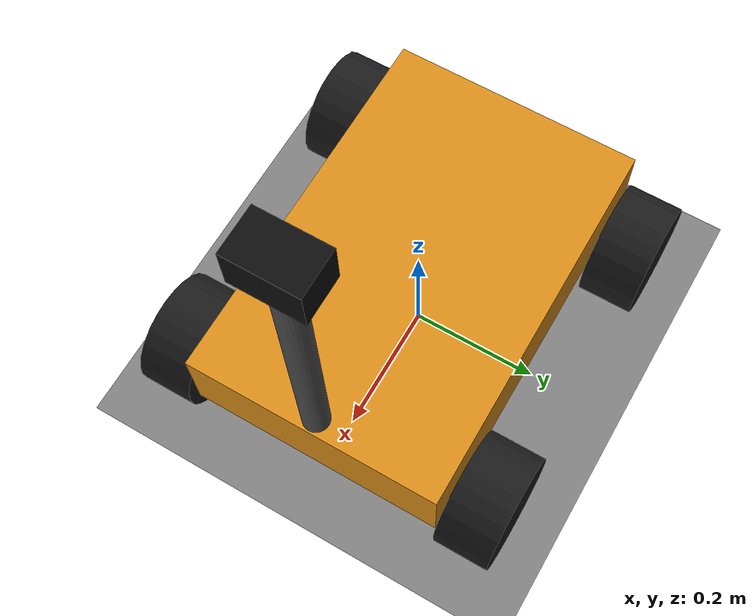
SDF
<?xml version="1.0" ?>
<!--
  로봇 검증 월드 (단계 3) — 평지에서 로봇 모델의 기본 동작 확인

  검증 항목:
   1. 모델 로드 (링크·조인트·센서 모두)
   2. cmd_vel 주행 → odom 발행, 직진/제자리회전 (설계서 §5.3 검증 게이트)
   3. 모든 센서 토픽 발행 (MID-70 / IMU / navsat / 카메라 3대)
-->
<sdf version="1.9">
  <world name="robot_test">
    <plugin filename="gz-sim-physics-system"           name="gz::sim::systems::Physics"/>
    <plugin filename="gz-sim-user-commands-system"     name="gz::sim::systems::UserCommands"/>
    <plugin filename="gz-sim-scene-broadcaster-system" name="gz::sim::systems::SceneBroadcaster"/>
    <plugin filename="gz-sim-sensors-system"           name="gz::sim::systems::Sensors">
      <render_engine>ogre2</render_engine>
    </plugin>
    <plugin filename="gz-sim-imu-system"    name="gz::sim::systems::Imu"/>
    <plugin filename="gz-sim-navsat-system" name="gz::sim::systems::NavSat"/>

    <physics name="2ms" type="dart">
      <max_step_size>0.002</max_step_size><real_time_factor>1.0</real_time_factor>
    </physics>

    <spherical_coordinates>
      <surface_model>EARTH_WGS84</surface_model>
      <world_frame_orientation>ENU</world_frame_orientation>
      <latitude_deg>36.57</latitude_deg><longitude_deg>128.50</longitude_deg><elevation>50</elevation>
    </spherical_coordinates>

    <scene><ambient>0.6 0.6 0.6 1</ambient><background>0.7 0.8 0.9</background>
      <shadows>false</shadows></scene>
    <light type="directional" name="sun"><cast_shadows>false</cast_shadows>
      <pose>0 0 10 0 0 0</pose><diffuse>1 1 1 1</diffuse>
      <direction>-0.3 0.3 -0.9</direction></light>

    <model name="ground_plane">
      <static>true</static>
      <link name="link">
        <collision name="c"><geometry><plane><normal>0 0 1</normal><size>100 100</size></plane></geometry>
          <surface><friction><ode><mu>1.0</mu><mu2>1.0</mu2></ode></friction></surface></collision>
        <visual name="v"><geometry><plane><normal>0 0 1</normal><size>100 100</size></plane></geometry>
          <material><ambient>0.5 0.5 0.5 1</ambient><diffuse>0.5 0.5 0.5 1</diffuse></material></visual>
      </link>
    </model>

    <include>
      <uri>model://scout_mini_mid70</uri>
      <pose>0 0 0 0 0 0</pose>
    </include>
  </world>
</sdf>

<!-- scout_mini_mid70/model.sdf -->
<sdf version="1.9">
  <model name="scout_mini_mid70">

    <!-- ═══════════════ 섀시 ═══════════════ -->
    <link name="base_link">
      <pose>0 0 0.145 0 0 0</pose>   <!-- 휠 반경 0.0875 + 지상고 여유 -->
      <inertial>
        <mass>20.0</mass>
        <inertia>
          <ixx>0.288</ixx><iyy>0.618</iyy><izz>0.850</izz>
          <ixy>0</ixy><ixz>0</ixz><iyz>0</iyz>
        </inertia>
      </inertial>
      <visual name="chassis">
        <geometry><box><size>0.595 0.395 0.130</size></box></geometry>
        <material><ambient>0.85 0.55 0.10 1</ambient><diffuse>0.85 0.55 0.10 1</diffuse></material>
      </visual>
      <collision name="chassis">
        <geometry><box><size>0.595 0.395 0.130</size></box></geometry>
      </collision>
    </link>

    <!-- 윤거 0.490 → ±0.245,  축거 0.452 → ±0.226 -->
    <!-- 매크로 대신 4개를 명시. gz-sim 은 xacro 를 안 쓰므로 SDF 직접 기술 -->

    <link name="front_left_wheel">
      <pose>0.226 0.245 0.0875 -1.5708 0 0</pose>
      <inertial><mass>1.5</mass>
        <inertia><ixx>0.00378</ixx><iyy>0.00574</iyy><izz>0.00378</izz>
                 <ixy>0</ixy><ixz>0</ixz><iyz>0</iyz></inertia></inertial>
      <visual name="v"><geometry><cylinder><radius>0.0875</radius><length>0.0852</length></cylinder></geometry>
        <material><ambient>0.1 0.1 0.1 1</ambient><diffuse>0.1 0.1 0.1 1</diffuse></material></visual>
      <collision name="c"><geometry><cylinder><radius>0.0875</radius><length>0.0852</length></cylinder></geometry>
        <surface><friction><ode><mu>1.0</mu><mu2>0.4</mu2></ode></friction></surface></collision>
    </link>
    <link name="front_right_wheel">
      <pose>0.226 -0.245 0.0875 -1.5708 0 0</pose>
      <inertial><mass>1.5</mass>
        <inertia><ixx>0.00378</ixx><iyy>0.00574</iyy><izz>0.00378</izz>
                 <ixy>0</ixy><ixz>0</ixz><iyz>0</iyz></inertia></inertial>
      <visual name="v"><geometry><cylinder><radius>0.0875</radius><length>0.0852</length></cylinder></geometry>
        <material><ambient>0.1 0.1 0.1 1</ambient><diffuse>0.1 0.1 0.1 1</diffuse></material></visual>
      <collision name="c"><geometry><cylinder><radius>0.0875</radius><length>0.0852</length></cylinder></geometry>
        <surface><friction><ode><mu>1.0</mu><mu2>0.4</mu2></ode></friction></surface></collision>
    </link>
    <link name="rear_left_wheel">
      <pose>-0.226 0.245 0.0875 -1.5708 0 0</pose>
      <inertial><mass>1.5</mass>
        <inertia><ixx>0.00378</ixx><iyy>0.00574</iyy><izz>0.00378</izz>
                 <ixy>0</ixy><ixz>0</ixz><iyz>0</iyz></inertia></inertial>
      <visual name="v"><geometry><cylinder><radius>0.0875</radius><length>0.0852</length></cylinder></geometry>
        <material><ambient>0.1 0.1 0.1 1</ambient><diffuse>0.1 0.1 0.1 1</diffuse></material></visual>
      <collision name="c"><geometry><cylinder><radius>0.0875</radius><length>0.0852</length></cylinder></geometry>
        <surface><friction><ode><mu>1.0</mu><mu2>0.4</mu2></ode></friction></surface></collision>
    </link>
    <link name="rear_right_wheel">
      <pose>-0.226 -0.245 0.0875 -1.5708 0 0</pose>
      <inertial><mass>1.5</mass>
        <inertia><ixx>0.00378</ixx><iyy>0.00574</iyy><izz>0.00378</izz>
                 <ixy>0</ixy><ixz>0</ixz><iyz>0</iyz></inertia></inertial>
      <visual name="v"><geometry><cylinder><radius>0.0875</radius><length>0.0852</length></cylinder></geometry>
        <material><ambient>0.1 0.1 0.1 1</ambient><diffuse>0.1 0.1 0.1 1</diffuse></material></visual>
      <collision name="c"><geometry><cylinder><radius>0.0875</radius><length>0.0852</length></cylinder></geometry>
        <surface><friction><ode><mu>1.0</mu><mu2>0.4</mu2></ode></friction></surface></collision>
    </link>

    <joint name="front_left_wheel_joint" type="revolute">
      <parent>base_link</parent><child>front_left_wheel</child>
      <axis><xyz>0 1 0</xyz><limit><lower>-1e16</lower><upper>1e16</upper></limit></axis>
    </joint>
    <joint name="front_right_wheel_joint" type="revolute">
      <parent>base_link</parent><child>front_right_wheel</child>
      <axis><xyz>0 1 0</xyz><limit><lower>-1e16</lower><upper>1e16</upper></limit></axis>
    </joint>
    <joint name="rear_left_wheel_joint" type="revolute">
      <parent>base_link</parent><child>rear_left_wheel</child>
      <axis><xyz>0 1 0</xyz><limit><lower>-1e16</lower><upper>1e16</upper></limit></axis>
    </joint>
    <joint name="rear_right_wheel_joint" type="revolute">
      <parent>base_link</parent><child>rear_right_wheel</child>
      <axis><xyz>0 1 0</xyz><limit><lower>-1e16</lower><upper>1e16</upper></limit></axis>
    </joint>

    <!-- ═══════════════ 마스트 + MID-70 (D12) ═══════════════ -->
    <!-- 로봇과 같은 방향(틸트 없음), 로봇보다 40cm 높게 z=0.645, 앞면 정렬 x=0.275 -->
    <link name="livox_mast">
      <pose>0.275 0 0.40 0 0 0</pose>
      <inertial><mass>0.5</mass>
        <inertia><ixx>0.01</ixx><iyy>0.01</iyy><izz>0.001</izz>
                 <ixy>0</ixy><ixz>0</ixz><iyz>0</iyz></inertia></inertial>
      <visual name="mast"><geometry><cylinder><radius>0.02</radius><length>0.50</length></cylinder></geometry>
        <material><ambient>0.3 0.3 0.3 1</ambient><diffuse>0.3 0.3 0.3 1</diffuse></material></visual>
      <visual name="sensor_body">
        <pose>0 0 0.29 0 0 0</pose>
        <geometry><box><size>0.0627 0.097 0.064</size></box></geometry>
        <material><ambient>0.05 0.05 0.05 1</ambient><diffuse>0.05 0.05 0.05 1</diffuse></material>
      </visual>
    </link>
    <joint name="livox_mast_joint" type="fixed">
      <parent>base_link</parent><child>livox_mast</child>
    </joint>

    <!-- MID-70 광학 원점: base_link 기준 (0.275, 0, 0.645). 마스트 링크 기준 z=0.29 -->
    <link name="livox_frame">
      <pose>0.275 0 0.645 0 0 0</pose>
      <inertial><mass>0.01</mass>
        <inertia><ixx>1e-5</ixx><iyy>1e-5</iyy><izz>1e-5</izz>
                 <ixy>0</ixy><ixz>0</ixz><iyz>0</iyz></inertia></inertial>
      <!-- MID-70 상당 gpu_lidar. 113x113, ±0.6143 rad(원형 FOV 마스킹 전), 0.05~90 m -->
      <sensor name="livox_mid70" type="gpu_lidar">
        <topic>livox/points_raw</topic>
        <update_rate>10</update_rate>
        <always_on>1</always_on>
        <lidar>
          <scan>
            <horizontal><samples>113</samples><min_angle>-0.6143</min_angle><max_angle>0.6143</max_angle></horizontal>
            <vertical><samples>113</samples><min_angle>-0.6143</min_angle><max_angle>0.6143</max_angle></vertical>
          </scan>
          <range><min>0.05</min><max>90.0</max><resolution>0.01</resolution></range>
          <noise><type>gaussian</type><mean>0.0</mean><stddev>0.02</stddev></noise>
        </lidar>
      </sensor>
    </link>
    <joint name="livox_frame_joint" type="fixed">
      <parent>base_link</parent><child>livox_frame</child>
    </joint>

    <!-- ═══════════════ IMU (설계서 §5.4 #2) ═══════════════ -->
    <link name="imu_link">
      <pose>0 0 0.245 0 0 0</pose>
      <inertial><mass>0.01</mass>
        <inertia><ixx>1e-6</ixx><iyy>1e-6</iyy><izz>1e-6</izz>
                 <ixy>0</ixy><ixz>0</ixz><iyz>0</iyz></inertia></inertial>
      <sensor name="imu" type="imu">
        <topic>imu</topic>
        <update_rate>200</update_rate>
        <always_on>1</always_on>
        <imu>
          <angular_velocity>
            <x><noise type="gaussian"><stddev>0.0002</stddev></noise></x>
            <y><noise type="gaussian"><stddev>0.0002</stddev></noise></y>
            <z><noise type="gaussian"><stddev>0.0002</stddev></noise></z>
          </angular_velocity>
          <linear_acceleration>
            <x><noise type="gaussian"><stddev>0.017</stddev></noise></x>
            <y><noise type="gaussian"><stddev>0.017</stddev></noise></y>
            <z><noise type="gaussian"><stddev>0.017</stddev></noise></z>
          </linear_acceleration>
        </imu>
      </sensor>
    </link>
    <joint name="imu_joint" type="fixed">
      <parent>base_link</parent><child>imu_link</child>
    </joint>

    <!-- ═══════════════ NavSat GNSS (설계서 §5.4 #4) ═══════════════ -->
    <link name="navsat_link">
      <pose>-0.20 0 0.60 0 0 0</pose>
      <inertial><mass>0.01</mass>
        <inertia><ixx>1e-6</ixx><iyy>1e-6</iyy><izz>1e-6</izz>
                 <ixy>0</ixy><ixz>0</ixz><iyz>0</iyz></inertia></inertial>
      <sensor name="navsat" type="navsat">
        <topic>navsat</topic>
        <update_rate>5</update_rate>
        <always_on>1</always_on>
      </sensor>
    </link>
    <joint name="navsat_joint" type="fixed">
      <parent>base_link</parent><child>navsat_link</child>
    </joint>

    <!-- ═══════════════ 수관 촬영 카메라 좌/우 (설계서 §5.4 #5·#6) ═══════════════ -->
    <link name="cam_canopy_left">
      <pose>0.05 0.26 1.20 0 -0.209 1.5708</pose>
      <inertial><mass>0.05</mass>
        <inertia><ixx>1e-5</ixx><iyy>1e-5</iyy><izz>1e-5</izz>
                 <ixy>0</ixy><ixz>0</ixz><iyz>0</iyz></inertia></inertial>
      <sensor name="cam_canopy_left" type="camera">
        <topic>cam/left/image</topic>
        <update_rate>10</update_rate>
        <always_on>1</always_on>
        <camera>
          <horizontal_fov>1.047</horizontal_fov>
          <image><width>1920</width><height>1080</height><format>R8G8B8</format></image>
          <clip><near>0.1</near><far>30</far></clip>
        </camera>
      </sensor>
    </link>
    <joint name="cam_left_joint" type="fixed">
      <parent>base_link</parent><child>cam_canopy_left</child>
    </joint>

    <link name="cam_canopy_right">
      <pose>0.05 -0.26 1.20 0 -0.209 -1.5708</pose>
      <inertial><mass>0.05</mass>
        <inertia><ixx>1e-5</ixx><iyy>1e-5</iyy><izz>1e-5</izz>
                 <ixy>0</ixy><ixz>0</ixz><iyz>0</iyz></inertia></inertial>
      <sensor name="cam_canopy_right" type="camera">
        <topic>cam/right/image</topic>
        <update_rate>10</update_rate>
        <always_on>1</always_on>
        <camera>
          <horizontal_fov>1.047</horizontal_fov>
          <image><width>1920</width><height>1080</height><format>R8G8B8</format></image>
          <clip><near>0.1</near><far>30</far></clip>
        </camera>
      </sensor>
    </link>
    <joint name="cam_right_joint" type="fixed">
      <parent>base_link</parent><child>cam_canopy_right</child>
    </joint>

    <!-- ═══════════════ 전방 RGB-D (행 진입/이탈 검출, 설계서 §5.4 #7) ═══════════════ -->
    <link name="cam_forward">
      <pose>0.30 0 0.45 0 0 0</pose>
      <inertial><mass>0.05</mass>
        <inertia><ixx>1e-5</ixx><iyy>1e-5</iyy><izz>1e-5</izz>
                 <ixy>0</ixy><ixz>0</ixz><iyz>0</iyz></inertia></inertial>
      <sensor name="cam_forward" type="rgbd_camera">
        <topic>cam/forward</topic>
        <update_rate>10</update_rate>
        <always_on>1</always_on>
        <camera>
          <horizontal_fov>1.204</horizontal_fov>
          <image><width>640</width><height>480</height></image>
          <clip><near>0.2</near><far>10</far></clip>
        </camera>
      </sensor>
    </link>
    <joint name="cam_forward_joint" type="fixed">
      <parent>base_link</parent><child>cam_forward</child>
    </joint>

    <!-- ═══════════════ 구동 — gz-sim DiffDrive (4WD 스키드스티어) ═══════════════ -->
    <plugin filename="gz-sim-diff-drive-system" name="gz::sim::systems::DiffDrive">
      <left_joint>front_left_wheel_joint</left_joint>
      <left_joint>rear_left_wheel_joint</left_joint>
      <right_joint>front_right_wheel_joint</right_joint>
      <right_joint>rear_right_wheel_joint</right_joint>
      <wheel_separation>0.490</wheel_separation>   <!-- 윤거 (축거 아님) -->
      <wheel_radius>0.0875</wheel_radius>
      <max_linear_velocity>2.7</max_linear_velocity>
      <max_linear_acceleration>3.0</max_linear_acceleration>
      <topic>cmd_vel</topic>
      <odom_topic>odom</odom_topic>
      <tf_topic>tf</tf_topic>
      <frame_id>odom</frame_id>
      <child_frame_id>base_link</child_frame_id>
      <odom_publish_frequency>50</odom_publish_frequency>
    </plugin>

    <!-- 휠 조인트 상태 발행 -->
    <plugin filename="gz-sim-joint-state-publisher-system" name="gz::sim::systems::JointStatePublisher">
      <topic>joint_states</topic>
    </plugin>

  </model>
</sdf>
